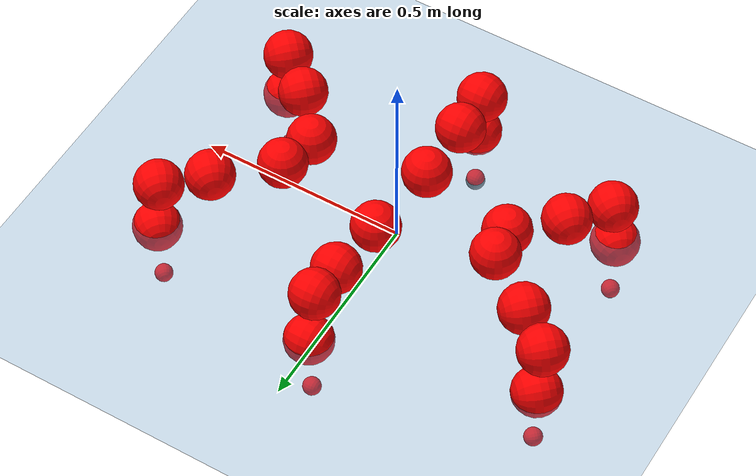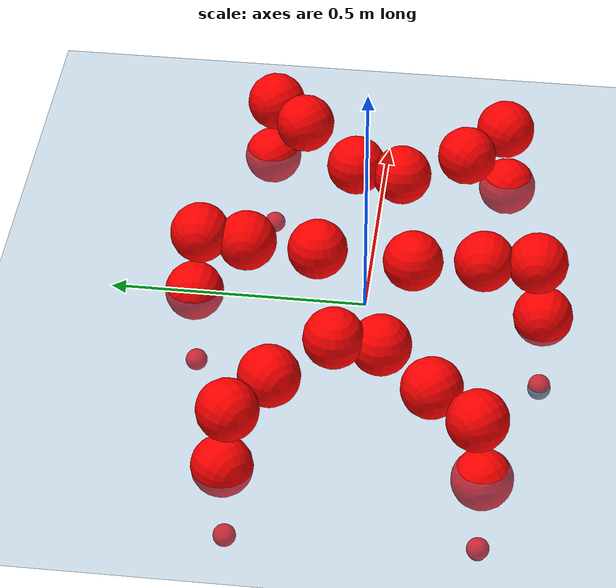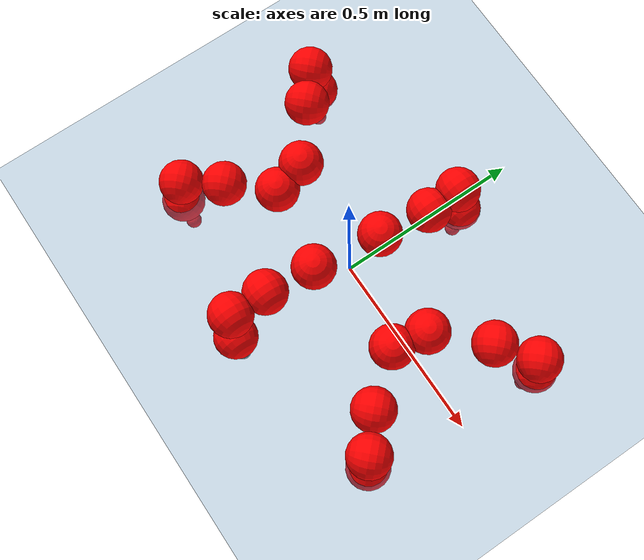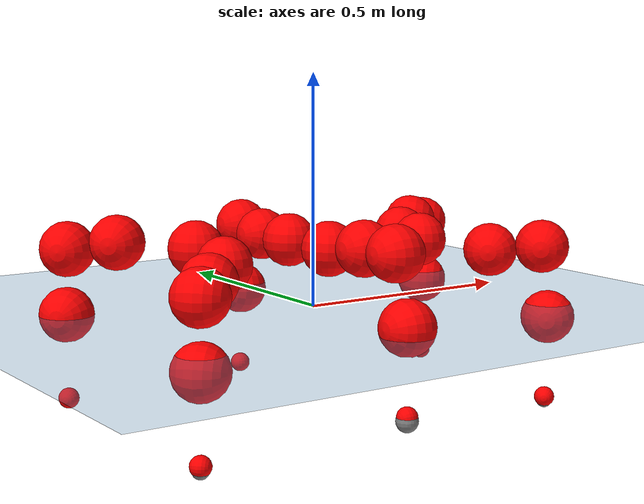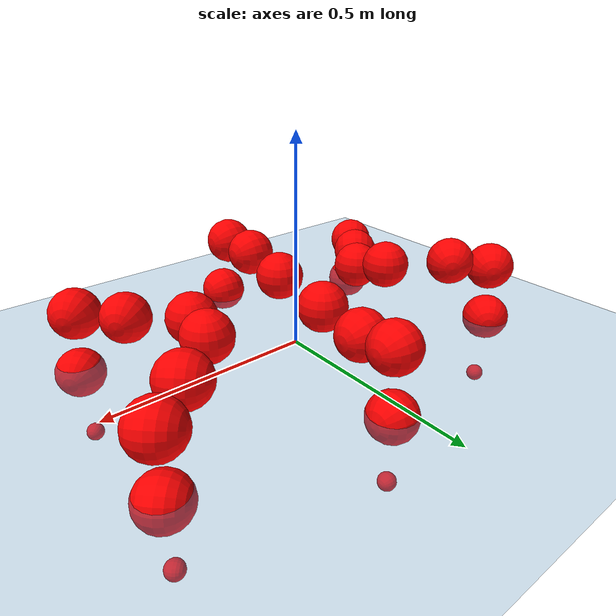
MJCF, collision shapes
<mujoco model="Golem">
  <compiler angle="radian" assetdir="assets" balanceinertia="true" inertiafromgeom="false"/>

  <option timestep="0.005" density="1.2" viscosity="2e-05"/>

  <size nkey="1"/>

  <visual>
    <quality shadowsize="8192"/>
    <map shadowclip="0.5"/>
  </visual>

  <default>
    <default class="/">
      <joint armature="0.01" damping="0.01" frictionloss="0.01"/>
      <geom contype="0" conaffinity="0" group="1" solref="-1000 -80"/>
      <site size="0.01 0.005 0.005" group="5"/>
      <general forcelimited="true" biastype="affine" gainprm="25" biasprm="0 -25 -0.5"/>
      <default class="visual">
        <geom type="mesh" group="2"/>
      </default>
      <default class="collision">
        <geom group="3"/>
      </default>
      <default class="foot">
        <geom size="0.01 0 0" condim="6" group="4" priority="1" solimp="0.015 1 0.01"/>
      </default>
      <default class="reward_collision_sphere">
        <geom group="5" rgba="1 0 0 1"/>
      </default>
    </default>
  </default>

  <asset>
    <texture type="skybox" colorspace="auto" name="//unnamed_texture_0" builtin="gradient" rgb1="0.95 0.95 0.95" rgb2="0.95 0.95 0.95" width="100" height="600"/>
    <texture type="2d" colorspace="auto" name="texplane" builtin="checker" rgb1="0.345 0.575 0.748" rgb2="0.345 0.575 0.748" markrgb="1 1 1" width="512" height="512"/>
    <material name="MatPlane" class="/" texture="texplane" texuniform="true" texrepeat="2 2" specular="0.9"/>
    <mesh name="body" class="/" file="body.stl" scale="0.001 0.001 0.001"/>
    <mesh name="coxa" class="/" file="coxa.stl" scale="0.001 0.001 0.001"/>
    <mesh name="femur" class="/" file="femur.stl" scale="0.001 0.001 0.001"/>
    <mesh name="tibia" class="/" file="tibia.stl" scale="0.001 0.001 0.001"/>
    <mesh name="tarsus" class="/" file="tarsus.stl" scale="0.001 0.001 0.001"/>
  </asset>

  <worldbody>
    <geom name="floor" class="/" size="100 100 0.125" type="plane" group="0" material="MatPlane"/>
    <light name="toplight_shadow" class="/" pos="0 0 5" dir="0.0990148 0.0990148 -0.990148" type="directional" ambient="0.04 0.04 0.04" diffuse="0.55 0.55 0.55" specular="0.12 0.12 0.12"/>
    <light name="toplight_fill" class="/" pos="0 0 5" dir="0.0990148 0.0990148 -0.990148" type="directional" castshadow="false" ambient="0.04 0.04 0.04" diffuse="0.3 0.3 0.3" specular="0.08 0.08 0.08"/>
    <body name="trunk" pos="-0.00649173 0.000204664 0.0166166" quat="0.999986 0.000418359 0.00535248 -0.000254642">
      <inertial pos="0.000394191 -0.0144811 0.0148762" quat="0.998739 0.0163312 0.044192 0.0173597" mass="8.60228" diaginertia="0.104579 0.00824983 0.10947"/>
      <joint name="//unnamed_joint_0" type="free"/>
      <geom name="//unnamed_geom_1" class="/" pos="0 0 0.110207" quat="1 0 0 0" type="mesh" rgba="0.9 0.9 0.9 1" mesh="body"/>
      <site name="imu" class="/" pos="0.269254 -0.00479433 0.0959954" size="0.0145633"/>
      <camera name="track" class="/" pos="0 -1.95625 0" quat="0.707107 0.707107 0 0" mode="trackcom"/>
      <camera name="ego_camera" class="/" pos="0.216956 0 0.172199" quat="-0.5 -0.5 0.5 0.5"/>
      <body name="coxa_RR" pos="-0.280746 -0.0896709 0.101447" quat="0.389619 0.000911933 0.00521402 -0.920961">
        <inertial pos="0.0177893 0.0123266 -0.00484833" quat="0.997033 -0.0254944 -0.0214464 0.0693866" mass="0.562395" diaginertia="0.128128 0.00872998 0.192913"/>
        <joint name="coxa_joint_RR" class="/" pos="0 0 0" axis="-0.0282235 0.00242194 -0.999599" range="-2.92442 3.00846" armature="0.0203435" damping="0" frictionloss="0.00331007"/>
        <geom name="//unnamed_geom_2" class="/" type="mesh" rgba="0.2 0.2 0.2 1" mesh="coxa"/>
        <geom name="//unnamed_geom_3" class="reward_collision_sphere" size="0.0582534" pos="-0.0500667 0 0"/>
        <body name="femur_RR" pos="0.0894545 0.00401994 -0.0112219" quat="0.499978 -0.499952 0.500033 0.500038">
          <inertial pos="0.0043566 0.00983053 -0.0165101" quat="0.999991 -0.00112722 -0.0022902 0.00339622" mass="0.586468" diaginertia="0.120281 0.00861712 0.174972"/>
          <joint name="femur_joint_RR" class="/" pos="0 0 0" axis="-0.0243307 -0.073313 -0.997012" stiffness="0.0361097" range="-3.30573 3.18249" armature="0.0220745" damping="0.0105921" frictionloss="0.0208443"/>
          <geom name="//unnamed_geom_4" class="/" type="mesh" rgba="0.9 0.9 0.9 1" mesh="femur"/>
          <geom name="//unnamed_geom_5" class="reward_collision_sphere" size="0.0582534"/>
          <body name="tibia_RR" pos="0.00721062 -0.111828 0.0125129" quat="-0.000349125 1 0.000414775 0.000523171">
            <inertial pos="0.0105778 -0.0156042 0.016593" quat="0.996951 -0.0198508 0.0734122 0.017479" mass="0.74413" diaginertia="0.175255 0.00978494 0.157924"/>
            <joint name="tibia_joint_RR" class="/" pos="0 0 0" axis="-0.0251935 -0.0046146 0.999672" range="-3.14691 3.41054" armature="0.0167584" damping="0" frictionloss="0.0104795"/>
            <geom name="//unnamed_geom_6" class="/" type="mesh" rgba="0.2 0.2 0.2 1" mesh="tibia"/>
            <geom name="//unnamed_geom_7" class="reward_collision_sphere" size="0.0582534"/>
            <body name="tarsus_RR" pos="0.137281 0.0160601 -0.00574394" quat="0.999968 0.00752139 0.00164445 0.00229713">
              <inertial pos="0.0913342 0.0175257 -0.00971702" quat="0.519527 0.513966 0.486376 0.478925" mass="0.633634" diaginertia="0.125525 0.00620989 0.123335"/>
              <joint name="tarsus_joint_RR" class="/" pos="0 0 0" axis="0.00537102 -0.00599376 0.999968" stiffness="0.0224218" range="-3.15765 3.23657" armature="0.0139208" damping="0.078604" frictionloss="0.0190871"/>
              <geom name="//unnamed_geom_8" class="/" type="mesh" rgba="0.9 0.9 0.9 1" mesh="tarsus"/>
              <geom name="foot_1" class="foot" size="0.0179075" pos="0.186916 0 0" quat="0 -0.707107 0 0.707107"/>
              <geom name="//unnamed_geom_10" class="reward_collision_sphere" size="0.0582534"/>
              <geom name="//unnamed_geom_11" class="reward_collision_sphere" size="0.021845" pos="0.179406 0 0"/>
              <site name="foot_1" class="foot" pos="0.186916 0 0" quat="0 -0.707107 0 0.707107" size="0.0145633"/>
            </body>
          </body>
        </body>
      </body>
      <body name="coxa_RM" pos="-0.0176063 -0.142959 0.121854" quat="0.707666 1.8379e-05 -0.000413866 -0.706547">
        <inertial pos="0.000415402 0.0122589 0.0185017" quat="0.999126 0.0164748 0.0134929 -0.0359733" mass="0.745482" diaginertia="0.17859 0.0125671 0.156198"/>
        <joint name="coxa_joint_RM" class="/" pos="0 0 0" axis="-0.0034314 -0.00277682 -0.99999" range="-3.15378 3.26072" armature="0.0227657" damping="0.0138891" frictionloss="0.00547745"/>
        <geom name="//unnamed_geom_12" class="/" type="mesh" rgba="0.2 0.2 0.2 1" mesh="coxa"/>
        <geom name="//unnamed_geom_13" class="reward_collision_sphere" size="0.0582534" pos="-0.0500667 0 0"/>
        <body name="femur_RM" pos="0.0861593 -0.0089695 0.0188148" quat="0.504253 -0.502304 0.492382 0.500979">
          <inertial pos="0.00722789 0.012389 -0.00332856" quat="0.996373 0.0848224 -0.00214797 0.0064209" mass="0.559007" diaginertia="0.104793 0.0102251 0.16024"/>
          <joint name="femur_joint_RM" class="/" pos="0 0 0" axis="0.0258129 0.036397 -0.999004" range="-2.83922 2.83735" armature="0.00103276" damping="0" frictionloss="0.0173102"/>
          <geom name="//unnamed_geom_14" class="/" type="mesh" rgba="0.9 0.9 0.9 1" mesh="femur"/>
          <geom name="//unnamed_geom_15" class="reward_collision_sphere" size="0.0582534"/>
          <body name="tibia_RM" pos="-0.00232222 -0.100908 0.000790286" quat="0.000496717 1 -5.17875e-05 0.00065773">
            <inertial pos="0.00902868 -0.00361422 0.0161939" quat="0.997275 -0.0149674 0.00509514 -0.0720645" mass="0.88287" diaginertia="0.135606 0.01054 0.143651"/>
            <joint name="tibia_joint_RM" class="/" pos="0 0 0" axis="-0.0296848 0.0143727 0.999456" range="-2.84476 3.44178" armature="0.0260581" damping="0.0695984" frictionloss="0.0211378"/>
            <geom name="//unnamed_geom_16" class="/" type="mesh" rgba="0.2 0.2 0.2 1" mesh="tibia"/>
            <geom name="//unnamed_geom_17" class="reward_collision_sphere" size="0.0582534"/>
            <body name="tarsus_RM" pos="0.146176 0.0148961 -0.0175406" quat="0.999987 0.00475951 -0.001377 -0.000993495">
              <inertial pos="0.110616 -0.00382371 0.0103688" quat="0.466306 0.489821 0.556755 0.482347" mass="0.623588" diaginertia="0.140946 0.00897041 0.165187"/>
              <joint name="tarsus_joint_RM" class="/" pos="0 0 0" axis="0.0128548 0.0316286 0.999417" stiffness="0.0458578" range="-3.23105 2.7627" armature="0.0141606" damping="0.0956666" frictionloss="0.0194369"/>
              <geom name="//unnamed_geom_18" class="/" type="mesh" rgba="0.9 0.9 0.9 1" mesh="tarsus"/>
              <geom name="foot_2" class="foot" size="0.0231626" pos="0.186916 0 0" quat="0 -0.707107 0 0.707107"/>
              <geom name="//unnamed_geom_20" class="reward_collision_sphere" size="0.0582534"/>
              <geom name="//unnamed_geom_21" class="reward_collision_sphere" size="0.021845" pos="0.179406 0 0"/>
              <site name="foot_2" class="foot" pos="0.186916 0 0" quat="0 -0.707107 0 0.707107" size="0.0145633"/>
            </body>
          </body>
        </body>
      </body>
      <body name="coxa_RF" pos="0.292965 -0.0816421 0.116598" quat="0.926905 -0.000951021 0.000616429 -0.375294">
        <inertial pos="-0.0163395 0.0160031 0.00672505" quat="0.999333 0.0209958 0.0293525 0.00559143" mass="0.649548" diaginertia="0.102098 0.00927823 0.140293"/>
        <joint name="coxa_joint_RF" class="/" pos="0 0 0" axis="-0.0704193 0.0328593 -0.996976" stiffness="0.0277334" range="-3.15278 3.26032" armature="0.0165915" damping="0.0746976" frictionloss="0.0216453"/>
        <geom name="//unnamed_geom_22" class="/" type="mesh" rgba="0.2 0.2 0.2 1" mesh="coxa"/>
        <geom name="//unnamed_geom_23" class="reward_collision_sphere" size="0.0582534" pos="-0.0500667 0 0"/>
        <body name="femur_RF" pos="0.106485 -0.0188696 -0.0150852" quat="0.50551 -0.496887 0.503563 0.493951">
          <inertial pos="-0.00591204 0.00487789 0.010371" quat="0.998245 0.0555934 -0.0200756 -0.00367404" mass="0.699641" diaginertia="0.148327 0.00942762 0.18074"/>
          <joint name="femur_joint_RF" class="/" pos="0 0 0" axis="-0.0335175 0.025814 -0.999105" stiffness="0.0662414" range="-3.35995 2.90622" armature="0.0179248" damping="0" frictionloss="0.0171262"/>
          <geom name="//unnamed_geom_24" class="/" type="mesh" rgba="0.9 0.9 0.9 1" mesh="femur"/>
          <geom name="//unnamed_geom_25" class="reward_collision_sphere" size="0.0582534"/>
          <body name="tibia_RF" pos="-0.00945027 -0.111258 0.00970925" quat="-0.00161688 0.999994 0.000428579 0.00289391">
            <inertial pos="0.00413261 0.0144642 -0.00238573" quat="0.99874 0.0432126 0.00333879 -0.0253099" mass="0.66158" diaginertia="0.162625 0.0115155 0.147854"/>
            <joint name="tibia_joint_RF" class="/" pos="0 0 0" axis="0.00496695 0.0140283 0.999889" stiffness="0.070822" range="-3.22908 3.43873" armature="0.0138549" damping="0.102585" frictionloss="0.0143225"/>
            <geom name="//unnamed_geom_26" class="/" type="mesh" rgba="0.2 0.2 0.2 1" mesh="tibia"/>
            <geom name="//unnamed_geom_27" class="reward_collision_sphere" size="0.0582534"/>
            <body name="tarsus_RF" pos="0.155125 0.0160929 -0.00292938" quat="0.999978 -0.00257224 -0.00339658 -0.00510371">
              <inertial pos="0.0944762 -0.00416186 -0.00773053" quat="0.500177 0.499073 0.499892 0.500856" mass="0.634263" diaginertia="0.107324 0.00677229 0.136863"/>
              <joint name="tarsus_joint_RF" class="/" pos="0 0 0" axis="-0.0329797 -0.00198156 0.999454" stiffness="0.00464118" range="-3.08036 3.27875" armature="0.00989776" damping="0.0342884" frictionloss="0.0188035"/>
              <geom name="//unnamed_geom_28" class="/" type="mesh" rgba="0.9 0.9 0.9 1" mesh="tarsus"/>
              <geom name="foot_3" class="foot" size="0.0164032" pos="0.186916 0 0" quat="0 -0.707107 0 0.707107"/>
              <geom name="//unnamed_geom_30" class="reward_collision_sphere" size="0.0582534"/>
              <geom name="//unnamed_geom_31" class="reward_collision_sphere" size="0.021845" pos="0.179406 0 0"/>
              <site name="foot_3" class="foot" pos="0.186916 0 0" quat="0 -0.707107 0 0.707107" size="0.0145633"/>
            </body>
          </body>
        </body>
      </body>
      <body name="coxa_LR" pos="-0.29896 0.0673595 0.125007" quat="0.382912 0.000198958 7.45784e-05 0.923785">
        <inertial pos="0.000162848 0.00929604 0.0139826" quat="0.997746 0.0476227 0.0242663 -0.040574" mass="0.847581" diaginertia="0.158672 0.00895651 0.198208"/>
        <joint name="coxa_joint_LR" class="/" pos="0 0 0" axis="0.0335521 -0.0653173 -0.9973" range="-3.08984 3.26028" armature="0.00722539" damping="0" frictionloss="0.00422592"/>
        <geom name="//unnamed_geom_32" class="/" type="mesh" rgba="0.2 0.2 0.2 1" mesh="coxa"/>
        <geom name="//unnamed_geom_33" class="reward_collision_sphere" size="0.0582534" pos="-0.0500667 0 0"/>
        <body name="femur_LR" pos="0.113286 0.0172344 0.00834838" quat="0.495839 -0.498107 0.504449 0.501563">
          <inertial pos="0.00431006 0.0104302 0.0178028" quat="0.998429 -0.00836982 -0.0262294 0.0488096" mass="0.637025" diaginertia="0.156575 0.0106289 0.188591"/>
          <joint name="femur_joint_LR" class="/" pos="0 0 0" axis="-0.05147 -0.0736482 0.995955" range="-3.17083 3.15852" armature="0.00552624" damping="0" frictionloss="0.0187051"/>
          <geom name="//unnamed_geom_34" class="/" type="mesh" rgba="0.9 0.9 0.9 1" mesh="femur"/>
          <geom name="//unnamed_geom_35" class="reward_collision_sphere" size="0.0582534"/>
          <body name="tibia_LR" pos="0.0142836 -0.103942 0.0125742" quat="-0.00197333 0.999997 -4.74201e-05 -0.00125517">
            <inertial pos="0.00538827 -0.0156147 0.00402367" quat="0.999335 0.0337898 0.0135489 -0.00213691" mass="0.521954" diaginertia="0.132804 0.00786553 0.104313"/>
            <joint name="tibia_joint_LR" class="/" pos="0 0 0" axis="0.0485119 0.0802217 -0.995596" stiffness="0.0226869" range="-3.43439 3.51717" armature="0.000887296" damping="0.0231419" frictionloss="0.00504346"/>
            <geom name="//unnamed_geom_36" class="/" type="mesh" rgba="0.2 0.2 0.2 1" mesh="tibia"/>
            <geom name="//unnamed_geom_37" class="reward_collision_sphere" size="0.0582534"/>
            <body name="tarsus_LR" pos="0.140473 0.00928989 0.00934764" quat="0.999992 0.00339902 0.00116206 0.00150753">
              <inertial pos="0.0824687 0.0061067 0.0189365" quat="0.50001 0.500283 0.499863 0.499843" mass="0.607225" diaginertia="0.112731 0.0101162 0.145738"/>
              <joint name="tarsus_joint_LR" class="/" pos="0 0 0" axis="-0.000484136 -0.00143794 -0.999999" stiffness="0.0323079" range="-3.38496 3.374" armature="0.0251151" damping="0" frictionloss="0.0143769"/>
              <geom name="//unnamed_geom_38" class="/" type="mesh" rgba="0.9 0.9 0.9 1" mesh="tarsus"/>
              <geom name="foot_4" class="foot" size="0.0137348" pos="0.186916 0 0" quat="0.707107 0 -0.707107 0"/>
              <geom name="//unnamed_geom_40" class="reward_collision_sphere" size="0.0582534"/>
              <geom name="//unnamed_geom_41" class="reward_collision_sphere" size="0.021845" pos="0.179406 0 0"/>
              <site name="foot_4" class="foot" pos="0.186916 0 0" quat="0.707107 0 -0.707107 0" size="0.0145633"/>
            </body>
          </body>
        </body>
      </body>
      <body name="coxa_LM" pos="0.00372934 0.143007 0.116255" quat="0.706159 0.00221042 -0.00276436 0.708044">
        <inertial pos="0.000543656 0.0163207 -0.0182167" quat="0.998538 0.0346274 -0.0324777 0.0258647" mass="0.570874" diaginertia="0.157351 0.00968814 0.157162"/>
        <joint name="coxa_joint_LM" class="/" pos="0 0 0" axis="0.0702176 0.0225183 -0.997278" stiffness="0.0358408" range="-3.05239 3.32143" armature="0.02808" damping="0" frictionloss="0.0142368"/>
        <geom name="//unnamed_geom_42" class="/" type="mesh" rgba="0.2 0.2 0.2 1" mesh="coxa"/>
        <geom name="//unnamed_geom_43" class="reward_collision_sphere" size="0.0582534" pos="-0.0500667 0 0"/>
        <body name="femur_LM" pos="0.0893138 -0.0169372 -0.00596653" quat="0.500822 -0.50016 0.498844 0.500171">
          <inertial pos="0.0176056 -0.0122648 0.0125809" quat="0.999785 -0.00786706 0.0114727 -0.0153648" mass="0.652088" diaginertia="0.173287 0.00924303 0.165633"/>
          <joint name="femur_joint_LM" class="/" pos="0 0 0" axis="-0.0299043 -0.0777891 0.996521" range="-3.13619 3.16083" armature="0.0189543" damping="0.0403993" frictionloss="0.00407816"/>
          <geom name="//unnamed_geom_44" class="/" type="mesh" rgba="0.9 0.9 0.9 1" mesh="femur"/>
          <geom name="//unnamed_geom_45" class="reward_collision_sphere" size="0.0582534"/>
          <body name="tibia_LM" pos="-0.0111876 -0.0904117 0.000325355" quat="0.00123293 0.999991 0.00211544 0.00334445">
            <inertial pos="-0.00706838 -0.00326996 -0.0136973" quat="0.997403 0.0131811 0.0555499 0.0438959" mass="0.805836" diaginertia="0.125883 0.00929674 0.19302"/>
            <joint name="tibia_joint_LM" class="/" pos="0 0 0" axis="-0.0058821 -0.0378054 -0.999268" range="-3.24576 2.82245" armature="0.0105283" damping="0.0471063" frictionloss="0.00706238"/>
            <geom name="//unnamed_geom_46" class="/" type="mesh" rgba="0.2 0.2 0.2 1" mesh="tibia"/>
            <geom name="//unnamed_geom_47" class="reward_collision_sphere" size="0.0582534"/>
            <body name="tarsus_LM" pos="0.154617 0.0160034 0.0106251" quat="1 -8.28743e-05 -0.000244396 -0.000162788">
              <inertial pos="0.0831731 0.00908775 0.00884431" quat="0.500705 0.5009 0.497497 0.50089" mass="0.604242" diaginertia="0.122782 0.00852481 0.132212"/>
              <joint name="tarsus_joint_LM" class="/" pos="0 0 0" axis="0.00639107 -0.00148057 -0.999978" stiffness="0.0398834" range="-3.0568 3.21175" armature="0.0126273" damping="0.029392" frictionloss="0.0203664"/>
              <geom name="//unnamed_geom_48" class="/" type="mesh" rgba="0.9 0.9 0.9 1" mesh="tarsus"/>
              <geom name="foot_5" class="foot" size="0.014393" pos="0.186916 0 0" quat="0.707107 0 -0.707107 0"/>
              <geom name="//unnamed_geom_50" class="reward_collision_sphere" size="0.0582534"/>
              <geom name="//unnamed_geom_51" class="reward_collision_sphere" size="0.021845" pos="0.179406 0 0"/>
              <site name="foot_5" class="foot" pos="0.186916 0 0" quat="0.707107 0 -0.707107 0" size="0.0145633"/>
            </body>
          </body>
        </body>
      </body>
      <body name="coxa_LF" pos="0.310382 0.0821212 0.119564" quat="0.923565 0.00117157 -0.00265333 0.383431">
        <inertial pos="-0.0140598 0.00390279 -0.00869742" quat="0.996503 -0.0602737 0.0157016 -0.0557032" mass="0.595852" diaginertia="0.10038 0.00820027 0.151364"/>
        <joint name="coxa_joint_LF" class="/" pos="0 0 0" axis="-0.00273608 0.00833657 -0.999962" range="-3.25537 3.45584" armature="0.0222731" damping="0.0136041" frictionloss="0.01787"/>
        <geom name="//unnamed_geom_52" class="/" type="mesh" rgba="0.2 0.2 0.2 1" mesh="coxa"/>
        <geom name="//unnamed_geom_53" class="reward_collision_sphere" size="0.0582534" pos="-0.0500667 0 0"/>
        <body name="femur_LF" pos="0.115583 -0.00141403 0.00704128" quat="0.496931 -0.502161 0.499038 0.501852">
          <inertial pos="0.014868 -0.0136325 0.00250872" quat="0.998785 -0.0083606 -0.0439831 -0.020574" mass="0.690365" diaginertia="0.155065 0.00853387 0.154772"/>
          <joint name="femur_joint_LF" class="/" pos="0 0 0" axis="-0.0146173 0.0815633 0.996561" stiffness="0.00700218" range="-2.81797 3.05323" armature="0.0142516" damping="0.0657552" frictionloss="0.0148035"/>
          <geom name="//unnamed_geom_54" class="/" type="mesh" rgba="0.9 0.9 0.9 1" mesh="femur"/>
          <geom name="//unnamed_geom_55" class="reward_collision_sphere" size="0.0582534"/>
          <body name="tibia_LF" pos="0.0171182 -0.114963 -0.0161176" quat="-0.00524918 0.999977 0.00361818 -0.0021893">
            <inertial pos="0.0145916 0.000536587 0.00583435" quat="0.995611 0.0681185 0.0618442 -0.017133" mass="0.478003" diaginertia="0.148541 0.00825152 0.166213"/>
            <joint name="tibia_joint_LF" class="/" pos="0 0 0" axis="-0.00635567 0.0312052 -0.999493" range="-3.15019 2.93181" armature="0.012704" damping="0.0793555" frictionloss="0.0191706"/>
            <geom name="//unnamed_geom_56" class="/" type="mesh" rgba="0.2 0.2 0.2 1" mesh="tibia"/>
            <geom name="//unnamed_geom_57" class="reward_collision_sphere" size="0.0582534"/>
            <body name="tarsus_LF" pos="0.146659 0.0146178 -0.000104558" quat="0.999996 -0.00218347 -0.000931839 -0.00166501">
              <inertial pos="0.112091 0.00727831 0.0119964" quat="0.51307 0.520063 0.471821 0.493638" mass="0.898273" diaginertia="0.163042 0.0108958 0.193887"/>
              <joint name="tarsus_joint_LF" class="/" pos="0 0 0" axis="-0.047274 -0.00135558 -0.998881" stiffness="0.0589979" range="-2.98329 2.91531" armature="0.022844" damping="0" frictionloss="0.012082"/>
              <geom name="//unnamed_geom_58" class="/" type="mesh" rgba="0.9 0.9 0.9 1" mesh="tarsus"/>
              <geom name="foot_6" class="foot" size="0.00735652" pos="0.186916 0 0" quat="0.707107 0 -0.707107 0"/>
              <geom name="//unnamed_geom_60" class="reward_collision_sphere" size="0.0582534"/>
              <geom name="//unnamed_geom_61" class="reward_collision_sphere" size="0.021845" pos="0.179406 0 0"/>
              <site name="foot_6" class="foot" pos="0.186916 0 0" quat="0.707107 0 -0.707107 0" size="0.0145633"/>
            </body>
          </body>
        </body>
      </body>
    </body>
  </worldbody>

  <contact>
    <pair class="/" geom1="floor" geom2="foot_1" name="//unnamed_contact_0"/>
    <pair class="/" geom1="floor" geom2="foot_2" name="//unnamed_contact_1"/>
    <pair class="/" geom1="floor" geom2="foot_3" name="//unnamed_contact_2"/>
    <pair class="/" geom1="floor" geom2="foot_4" name="//unnamed_contact_3"/>
    <pair class="/" geom1="floor" geom2="foot_5" name="//unnamed_contact_4"/>
    <pair class="/" geom1="floor" geom2="foot_6" name="//unnamed_contact_5"/>
  </contact>

  <actuator>
    <general name="coxa_joint_RR" class="/" joint="coxa_joint_RR" forcerange="-12.3753 12.3753" gainprm="30.024" biasprm="0 -30.024 -0.747935"/>
    <general name="femur_joint_RR" class="/" joint="femur_joint_RR" forcerange="-5.65126 5.65126" gainprm="30.024" biasprm="0 -30.024 -0.747935"/>
    <general name="tibia_joint_RR" class="/" joint="tibia_joint_RR" forcerange="-16.8147 16.8147" gainprm="30.024" biasprm="0 -30.024 -0.747935"/>
    <general name="tarsus_joint_RR" class="/" joint="tarsus_joint_RR" forcerange="-6.7687 6.7687" gainprm="30.024" biasprm="0 -30.024 -0.747935"/>
    <general name="coxa_joint_RM" class="/" joint="coxa_joint_RM" forcerange="-3.11156 3.11156" gainprm="30.024" biasprm="0 -30.024 -0.747935"/>
    <general name="femur_joint_RM" class="/" joint="femur_joint_RM" forcerange="-12.2501 12.2501" gainprm="30.024" biasprm="0 -30.024 -0.747935"/>
    <general name="tibia_joint_RM" class="/" joint="tibia_joint_RM" forcerange="-6.67553 6.67553" gainprm="30.024" biasprm="0 -30.024 -0.747935"/>
    <general name="tarsus_joint_RM" class="/" joint="tarsus_joint_RM" forcerange="-16.8423 16.8423" gainprm="30.024" biasprm="0 -30.024 -0.747935"/>
    <general name="coxa_joint_RF" class="/" joint="coxa_joint_RF" forcerange="-4.72817 4.72817" gainprm="30.024" biasprm="0 -30.024 -0.747935"/>
    <general name="femur_joint_RF" class="/" joint="femur_joint_RF" forcerange="-10.2512 10.2512" gainprm="30.024" biasprm="0 -30.024 -0.747935"/>
    <general name="tibia_joint_RF" class="/" joint="tibia_joint_RF" forcerange="-11.8312 11.8312" gainprm="30.024" biasprm="0 -30.024 -0.747935"/>
    <general name="tarsus_joint_RF" class="/" joint="tarsus_joint_RF" forcerange="-10.9816 10.9816" gainprm="30.024" biasprm="0 -30.024 -0.747935"/>
    <general name="coxa_joint_LR" class="/" joint="coxa_joint_LR" forcerange="-4.0207 4.0207" gainprm="30.024" biasprm="0 -30.024 -0.747935"/>
    <general name="femur_joint_LR" class="/" joint="femur_joint_LR" forcerange="-10.5409 10.5409" gainprm="30.024" biasprm="0 -30.024 -0.747935"/>
    <general name="tibia_joint_LR" class="/" joint="tibia_joint_LR" forcerange="-5.1282 5.1282" gainprm="30.024" biasprm="0 -30.024 -0.747935"/>
    <general name="tarsus_joint_LR" class="/" joint="tarsus_joint_LR" forcerange="-3.75731 3.75731" gainprm="30.024" biasprm="0 -30.024 -0.747935"/>
    <general name="coxa_joint_LM" class="/" joint="coxa_joint_LM" forcerange="-16.7162 16.7162" gainprm="30.024" biasprm="0 -30.024 -0.747935"/>
    <general name="femur_joint_LM" class="/" joint="femur_joint_LM" forcerange="-7.20814 7.20814" gainprm="30.024" biasprm="0 -30.024 -0.747935"/>
    <general name="tibia_joint_LM" class="/" joint="tibia_joint_LM" forcerange="-4.18303 4.18303" gainprm="30.024" biasprm="0 -30.024 -0.747935"/>
    <general name="tarsus_joint_LM" class="/" joint="tarsus_joint_LM" forcerange="-3.25437 3.25437" gainprm="30.024" biasprm="0 -30.024 -0.747935"/>
    <general name="coxa_joint_LF" class="/" joint="coxa_joint_LF" forcerange="-16.0404 16.0404" gainprm="30.024" biasprm="0 -30.024 -0.747935"/>
    <general name="femur_joint_LF" class="/" joint="femur_joint_LF" forcerange="-15.9264 15.9264" gainprm="30.024" biasprm="0 -30.024 -0.747935"/>
    <general name="tibia_joint_LF" class="/" joint="tibia_joint_LF" forcerange="-14.1301 14.1301" gainprm="30.024" biasprm="0 -30.024 -0.747935"/>
    <general name="tarsus_joint_LF" class="/" joint="tarsus_joint_LF" forcerange="-14.8915 14.8915" gainprm="30.024" biasprm="0 -30.024 -0.747935"/>
  </actuator>

  <sensor>
    <gyro site="imu" name="imu_angular_velocity"/>
    <velocimeter site="imu" name="imu_linear_velocity"/>
    <framelinvel objtype="site" objname="foot_1" name="foot_1_global_linear_velocity"/>
    <framelinvel objtype="site" objname="foot_2" name="foot_2_global_linear_velocity"/>
    <framelinvel objtype="site" objname="foot_3" name="foot_3_global_linear_velocity"/>
    <framelinvel objtype="site" objname="foot_4" name="foot_4_global_linear_velocity"/>
    <framelinvel objtype="site" objname="foot_5" name="foot_5_global_linear_velocity"/>
    <framelinvel objtype="site" objname="foot_6" name="foot_6_global_linear_velocity"/>
  </sensor>

  <keyframe>
    <key name="home" qpos="0 0 0.1457 1 0 0 0 0 0 0 0 0 0 0 0 0 0 0 0 0 0 0 0 0 0 0 0 0 0 0 0"/>
  </keyframe>
</mujoco>
